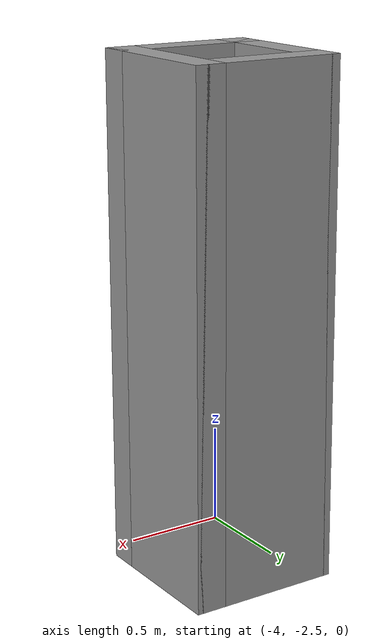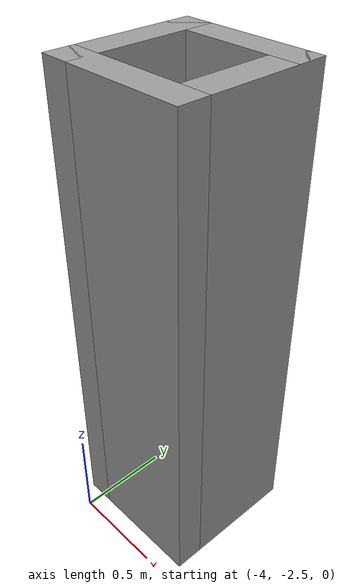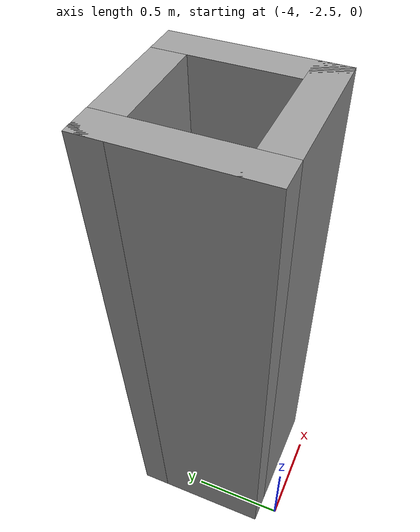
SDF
<?xml version='1.0'?>
<sdf version='1.7'>
  <model name='box'>
    <pose>-2.0475 -1.2025 0 0 -0 0</pose>
    <link name='Wall_2'>
      <collision name='Wall_2_Collision'>
        <geometry>
          <box>
            <size>0.75 0.15 2.5</size>
          </box>
        </geometry>
        <pose>0 0 1.25 0 -0 0</pose>
      </collision>
      <visual name='Wall_2_Visual'>
        <pose>0 0 1.25 0 -0 0</pose>
        <geometry>
          <box>
            <size>0.75 0.15 2.5</size>
          </box>
        </geometry>
        <material>
          <script>
            <uri>file://media/materials/scripts/gazebo.material</uri>
            <name>Gazebo/Grey</name>
          </script>
          <ambient>1 1 1 1</ambient>
        </material>
        <meta>
          <layer>0</layer>
        </meta>
      </visual>
      <pose>-1.9725 -0.8275 0 0 -0 -1.5708</pose>
    </link>
    <link name='Wall_6'>
      <collision name='Wall_6_Collision'>
        <geometry>
          <box>
            <size>0.75 0.15 2.5</size>
          </box>
        </geometry>
        <pose>0 0 1.25 0 -0 0</pose>
      </collision>
      <visual name='Wall_6_Visual'>
        <pose>0 0 1.25 0 -0 0</pose>
        <geometry>
          <box>
            <size>0.75 0.15 2.5</size>
          </box>
        </geometry>
        <material>
          <script>
            <uri>file://media/materials/scripts/gazebo.material</uri>
            <name>Gazebo/Grey</name>
          </script>
          <ambient>1 1 1 1</ambient>
        </material>
        <meta>
          <layer>0</layer>
        </meta>
      </visual>
      <pose>-1.6725 -0.5275 0 0 -0 0</pose>
    </link>
    <link name='Wall_7'>
      <collision name='Wall_7_Collision'>
        <geometry>
          <box>
            <size>0.75 0.15 2.5</size>
          </box>
        </geometry>
        <pose>0 0 1.25 0 -0 0</pose>
      </collision>
      <visual name='Wall_7_Visual'>
        <pose>0 0 1.25 0 -0 0</pose>
        <geometry>
          <box>
            <size>0.75 0.15 2.5</size>
          </box>
        </geometry>
        <material>
          <script>
            <uri>file://media/materials/scripts/gazebo.material</uri>
            <name>Gazebo/Grey</name>
          </script>
          <ambient>1 1 1 1</ambient>
        </material>
        <meta>
          <layer>0</layer>
        </meta>
      </visual>
      <pose>-1.3725 -0.8275 0 0 -0 -1.5708</pose>
    </link>
    <link name='Wall_8'>
      <collision name='Wall_8_Collision'>
        <geometry>
          <box>
            <size>0.75 0.15 2.5</size>
          </box>
        </geometry>
        <pose>0 0 1.25 0 -0 0</pose>
      </collision>
      <visual name='Wall_8_Visual'>
        <pose>0 0 1.25 0 -0 0</pose>
        <geometry>
          <box>
            <size>0.75 0.15 2.5</size>
          </box>
        </geometry>
        <material>
          <script>
            <uri>file://media/materials/scripts/gazebo.material</uri>
            <name>Gazebo/Grey</name>
          </script>
          <ambient>1 1 1 1</ambient>
        </material>
        <meta>
          <layer>0</layer>
        </meta>
      </visual>
      <pose>-1.6725 -1.1275 0 0 -0 3.14159</pose>
    </link>
    <static>1</static>
  </model>
</sdf>
